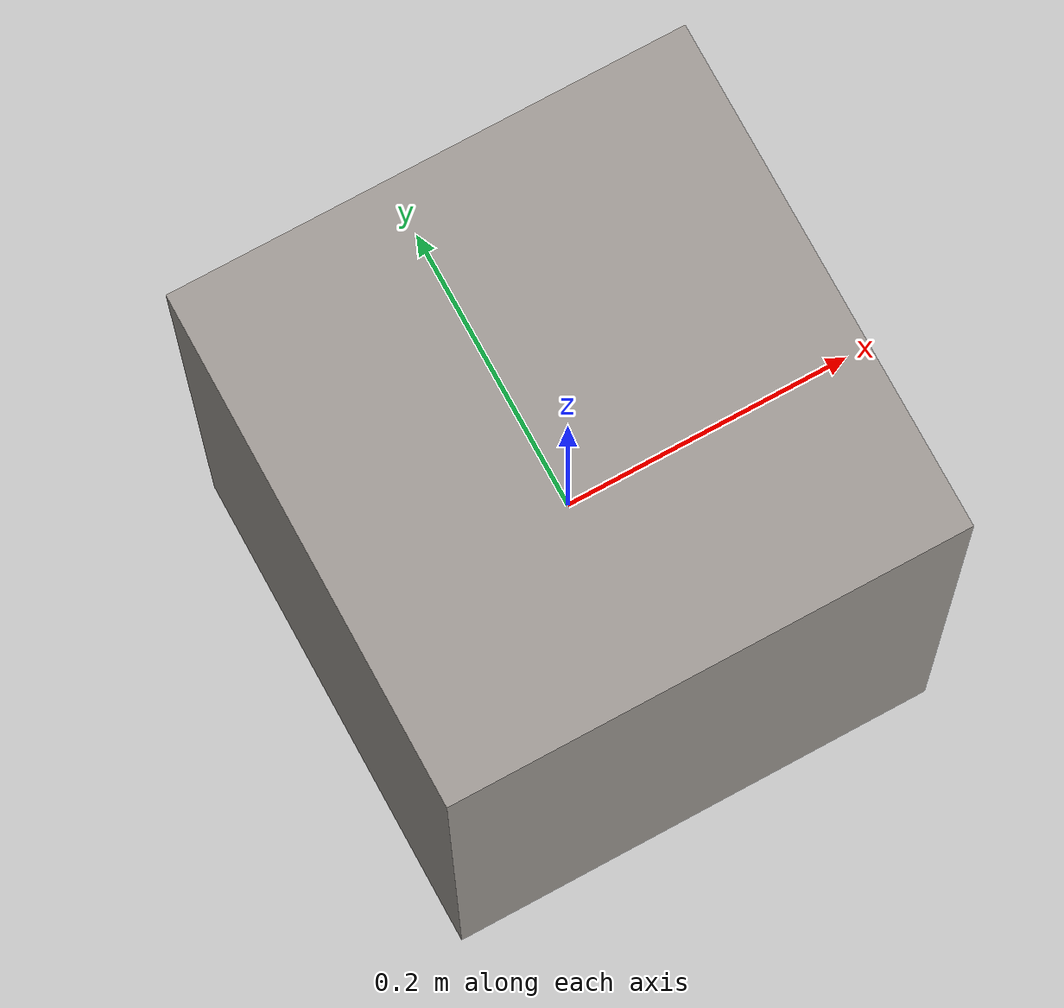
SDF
<?xml version="1.0"?>
<sdf version="1.6">
  <model name="coffee_maker">
    <static>true</static>
    <link name="link">
      <collision name="col">
        <geometry>
          <box>
            <size>0.35 0.35 0.48</size>
          </box>
        </geometry>
      </collision>
      <visual name="vis">
        <geometry>
          <box>
            <size>0.35 0.35 0.48</size>
          </box>
        </geometry>
        <material>
          <ambient>0.62 0.6 0.58 1</ambient>
          <diffuse>0.62 0.6 0.58 1</diffuse>
        </material>
      </visual>
    </link>
  </model>
</sdf>
